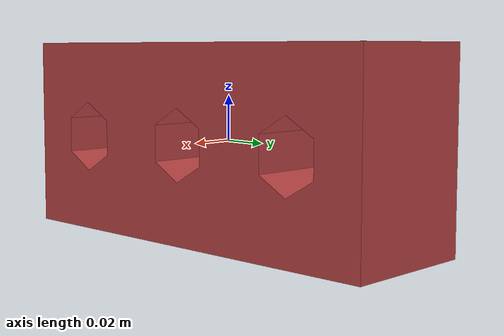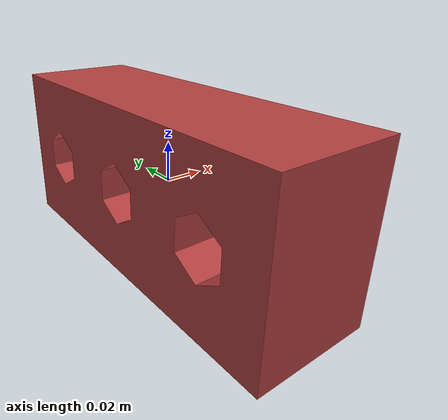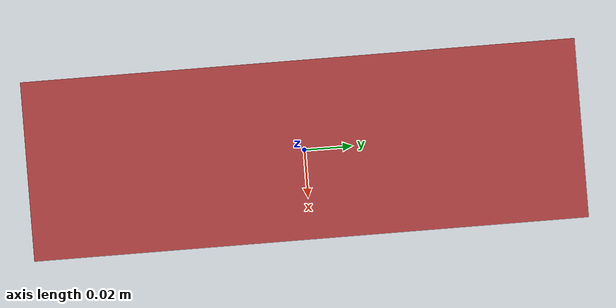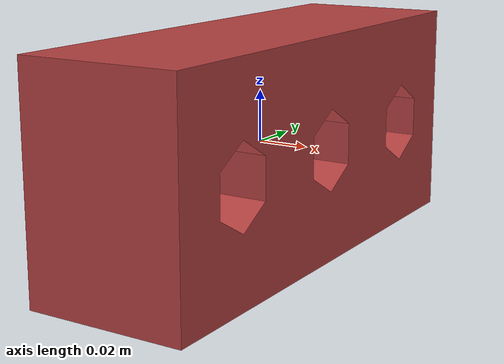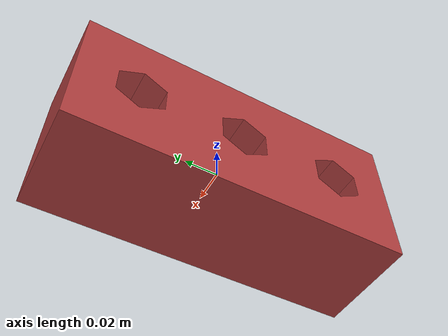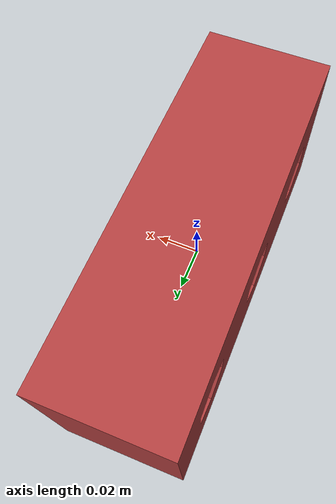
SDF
<?xml version="1.0" ?>
<sdf version='1.6'>
  <model name='Brick'>
    <link name='Brick'>
      <pose frame=''>0 0 0 1.5708 0 1.5708</pose>
      <inertial>
        <pose frame=''>0 0 0 1.5708 0 1.5708</pose>
        <mass>0.1</mass>
        <inertia>
          <ixx>0.0017</ixx>
          <ixy>0</ixy>
          <ixz>0</ixz>
          <iyy>0.0017</iyy>
          <iyz>0</iyz>
          <izz>0.0017</izz>
        </inertia>
      </inertial>
      <collision name='Brick_collision'>
        <pose frame=''>0 0 0 1.5708 0 1.5708</pose>
        <geometry>
          <box>
            <size>0.192 0.062 0.086</size>
          </box>
        </geometry>
        <surface>
          <friction>
            <ode>
              <mu>10000</mu>
              <mu2>5000</mu2>
              <fdir1>0 0 1</fdir1>
              <slip1>0.0</slip1>
              <slip2>0.0</slip2>
            </ode>
          </friction>
          <contact>
            <ode>
              <kp>100000.000000</kp>
              <kd>10.00000</kd>
              <max_vel>2.000000</max_vel>
              <min_depth>0.0001</min_depth>
            </ode>
          </contact>
        </surface>
      </collision>
      <visual name='Brick_visual'>
        <pose frame=''>0 0 0 1.5708 -0 0</pose>
        <geometry>
          <mesh>
            <scale>1 1 1</scale>
            <uri>model://Brick/meshes/Brick_1.STL</uri>
          </mesh>
        </geometry>
        <material>
          <ambient>0.698 0.25 0.25 1</ambient>
          <diffuse>0.698 0.25 0.25 1</diffuse>
          <specular>0.1 0.1 0.1 1</specular>
          <emissive>0 0 0 0</emissive>
        </material>
      </visual>
    </link>
  </model>
</sdf>
